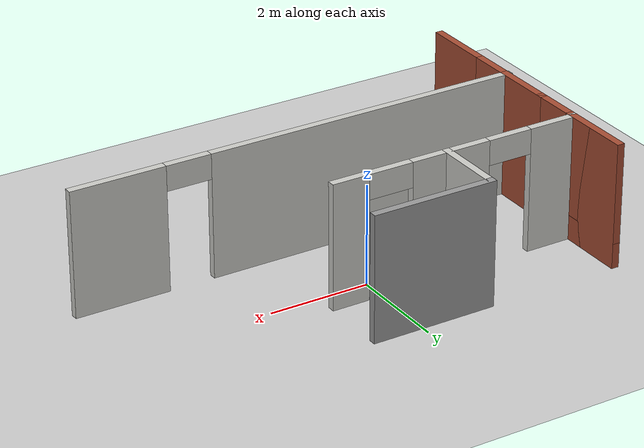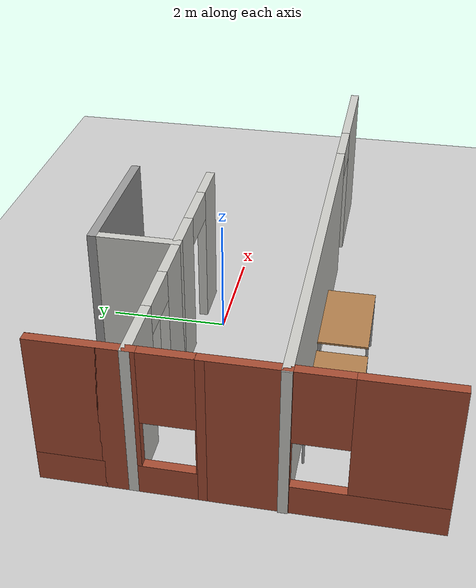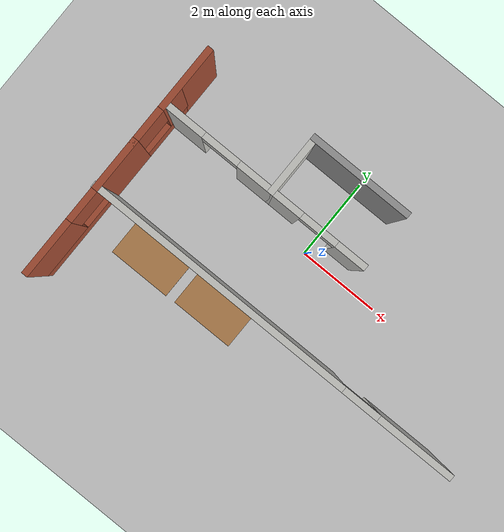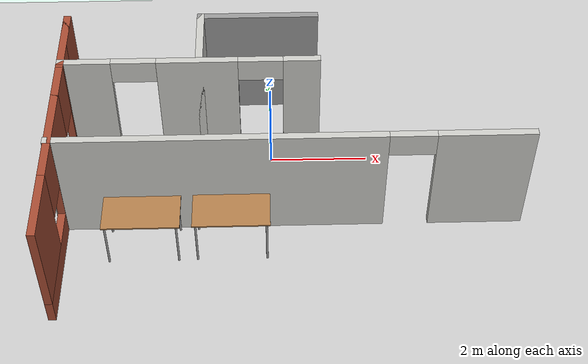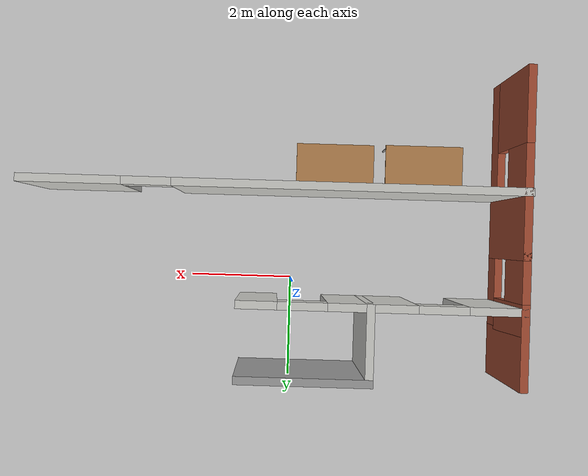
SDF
<sdf version="1.6">
 <world name="default">
  <model name="ground_plane">
   <static>1</static>
   <link name="link">
    <collision name="collision">
     <geometry><plane><normal>0 0 1</normal><size>100 100</size></plane></geometry>
     <surface>
      <contact><collide_bitmask>65535</collide_bitmask></contact>
      <friction><ode><mu>100</mu><mu2>50</mu2></ode></friction>
     </surface>
    </collision>
    <visual name="visual">
     <cast_shadows>0</cast_shadows>
     <geometry><plane><normal>0 0 1</normal><size>100 100</size></plane></geometry>
     <material>
      <script><uri>file://media/materials/scripts/gazebo.material</uri><name>Gazebo/Grey</name></script>
     </material>
    </visual>
   </link>
  </model>
  <model name="table">
   <static>1</static>
   <link name="link">
    <collision name="surface">
     <pose>0 0 1 0 -0 0</pose>
     <geometry><box><size>1.5 0.8 0.03</size></box></geometry>
     <surface><friction><ode><mu>0.6</mu><mu2>0.6</mu2></ode></friction></surface>
    </collision>
    <visual name="visual1">
     <pose>0 0 1 0 -0 0</pose>
     <geometry><box><size>1.5 0.8 0.03</size></box></geometry>
     <material>
      <script><uri>file://media/materials/scripts/gazebo.material</uri><name>Gazebo/Wood</name></script>
     </material>
    </visual>
    <collision name="front_left_leg">
     <pose>0.68 0.38 0.5 0 -0 0</pose>
     <geometry><cylinder><radius>0.02</radius><length>1</length></cylinder></geometry>
    </collision>
    <visual name="front_left_leg">
     <pose>0.68 0.38 0.5 0 -0 0</pose>
     <geometry><cylinder><radius>0.02</radius><length>1</length></cylinder></geometry>
     <material>
      <script><uri>file://media/materials/scripts/gazebo.material</uri><name>Gazebo/Grey</name></script>
     </material>
    </visual>
    <collision name="front_right_leg">
     <pose>0.68 -0.38 0.5 0 -0 0</pose>
     <geometry><cylinder><radius>0.02</radius><length>1</length></cylinder></geometry>
    </collision>
    <visual name="front_right_leg">
     <pose>0.68 -0.38 0.5 0 -0 0</pose>
     <geometry><cylinder><radius>0.02</radius><length>1</length></cylinder></geometry>
     <material>
      <script><uri>file://media/materials/scripts/gazebo.material</uri><name>Gazebo/Grey</name></script>
     </material>
    </visual>
    <collision name="back_right_leg">
     <pose>-0.68 -0.38 0.5 0 -0 0</pose>
     <geometry><cylinder><radius>0.02</radius><length>1</length></cylinder></geometry>
    </collision>
    <visual name="back_right_leg">
     <pose>-0.68 -0.38 0.5 0 -0 0</pose>
     <geometry><cylinder><radius>0.02</radius><length>1</length></cylinder></geometry>
     <material>
      <script><uri>file://media/materials/scripts/gazebo.material</uri><name>Gazebo/Grey</name></script>
     </material>
    </visual>
    <collision name="back_left_leg">
     <pose>-0.68 0.38 0.5 0 -0 0</pose>
     <geometry><cylinder><radius>0.02</radius><length>1</length></cylinder></geometry>
    </collision>
    <visual name="back_left_leg">
     <pose>-0.68 0.38 0.5 0 -0 0</pose>
     <geometry><cylinder><radius>0.02</radius><length>1</length></cylinder></geometry>
     <material>
      <script><uri>file://media/materials/scripts/gazebo.material</uri><name>Gazebo/Grey</name></script>
     </material>
    </visual>
   </link>
   <pose>-0.795331 -2.24058 0 0 -0 0</pose>
  </model>
  <model name="table_0">
   <static>1</static>
   <link name="link">
    <collision name="surface">
     <pose>0 0 1 0 -0 0</pose>
     <geometry><box><size>1.5 0.8 0.03</size></box></geometry>
     <surface><friction><ode><mu>0.6</mu><mu2>0.6</mu2></ode></friction></surface>
    </collision>
    <visual name="visual1">
     <pose>0 0 1 0 -0 0</pose>
     <geometry><box><size>1.5 0.8 0.03</size></box></geometry>
     <material>
      <script><uri>file://media/materials/scripts/gazebo.material</uri><name>Gazebo/Wood</name></script>
     </material>
    </visual>
    <collision name="front_left_leg">
     <pose>0.68 0.38 0.5 0 -0 0</pose>
     <geometry><cylinder><radius>0.02</radius><length>1</length></cylinder></geometry>
    </collision>
    <visual name="front_left_leg">
     <pose>0.68 0.38 0.5 0 -0 0</pose>
     <geometry><cylinder><radius>0.02</radius><length>1</length></cylinder></geometry>
     <material>
      <script><uri>file://media/materials/scripts/gazebo.material</uri><name>Gazebo/Grey</name></script>
     </material>
    </visual>
    <collision name="front_right_leg">
     <pose>0.68 -0.38 0.5 0 -0 0</pose>
     <geometry><cylinder><radius>0.02</radius><length>1</length></cylinder></geometry>
    </collision>
    <visual name="front_right_leg">
     <pose>0.68 -0.38 0.5 0 -0 0</pose>
     <geometry><cylinder><radius>0.02</radius><length>1</length></cylinder></geometry>
     <material>
      <script><uri>file://media/materials/scripts/gazebo.material</uri><name>Gazebo/Grey</name></script>
     </material>
    </visual>
    <collision name="back_right_leg">
     <pose>-0.68 -0.38 0.5 0 -0 0</pose>
     <geometry><cylinder><radius>0.02</radius><length>1</length></cylinder></geometry>
    </collision>
    <visual name="back_right_leg">
     <pose>-0.68 -0.38 0.5 0 -0 0</pose>
     <geometry><cylinder><radius>0.02</radius><length>1</length></cylinder></geometry>
     <material>
      <script><uri>file://media/materials/scripts/gazebo.material</uri><name>Gazebo/Grey</name></script>
     </material>
    </visual>
    <collision name="back_left_leg">
     <pose>-0.68 0.38 0.5 0 -0 0</pose>
     <geometry><cylinder><radius>0.02</radius><length>1</length></cylinder></geometry>
    </collision>
    <visual name="back_left_leg">
     <pose>-0.68 0.38 0.5 0 -0 0</pose>
     <geometry><cylinder><radius>0.02</radius><length>1</length></cylinder></geometry>
     <material>
      <script><uri>file://media/materials/scripts/gazebo.material</uri><name>Gazebo/Grey</name></script>
     </material>
    </visual>
   </link>
   <pose>-2.52213 -2.25429 0 0 -0 0</pose>
  </model>
  <model name="Building">
   <link name="Wall_0">
    <pose>-4.55 -1.175 0 0 0 -1.5708</pose>
    <visual name="Wall_0_Visual_0">
     <pose>-1.09777 0 1.25 0 -0 0</pose>
     <geometry><box><size>1.30446 0.15 2.5</size></box></geometry>
     <material>
      <script><uri>file://media/materials/scripts/gazebo.material</uri><name>Gazebo/Bricks</name></script>
      <ambient>1 1 1 1</ambient>
      <shader type="pixel"/>
      <diffuse>1 1 1 1</diffuse>
      <specular>0.2 0.2 0.2 1</specular>
      <emissive>0 0 0 1</emissive>
     </material>
     <meta><layer>0</layer></meta>
    </visual>
    <visual name="Wall_0_Visual_1">
     <pose>0.652232 0 0.25 0 -0 0</pose>
     <geometry><box><size>2.19554 0.15 0.5</size></box></geometry>
     <material>
      <script><uri>file://media/materials/scripts/gazebo.material</uri><name>Gazebo/Bricks</name></script>
      <ambient>1 1 1 1</ambient>
      <shader type="pixel"/>
      <diffuse>1 1 1 1</diffuse>
      <specular>0.2 0.2 0.2 1</specular>
      <emissive>0 0 0 1</emissive>
     </material>
     <meta><layer>0</layer></meta>
    </visual>
    <visual name="Wall_0_Visual_2">
     <pose>1.05223 0 1.5 0 -0 0</pose>
     <geometry><box><size>1.39554 0.15 2</size></box></geometry>
     <material>
      <script><uri>file://media/materials/scripts/gazebo.material</uri><name>Gazebo/Bricks</name></script>
      <ambient>1 1 1 1</ambient>
      <shader type="pixel"/>
      <diffuse>1 1 1 1</diffuse>
      <specular>0.2 0.2 0.2 1</specular>
      <emissive>0 0 0 1</emissive>
     </material>
     <meta><layer>0</layer></meta>
    </visual>
    <visual name="Wall_0_Visual_3">
     <pose>-0.045536 0 1.9 0 -0 0</pose>
     <geometry><box><size>0.8 0.15 1.2</size></box></geometry>
     <material>
      <script><uri>file://media/materials/scripts/gazebo.material</uri><name>Gazebo/Bricks</name></script>
      <ambient>1 1 1 1</ambient>
      <shader type="pixel"/>
      <diffuse>1 1 1 1</diffuse>
      <specular>0.2 0.2 0.2 1</specular>
      <emissive>0 0 0 1</emissive>
     </material>
     <meta><layer>0</layer></meta>
    </visual>
    <collision name="Wall_0_Collision_0">
     <pose>-1.09777 0 1.25 0 -0 0</pose>
     <geometry><box><size>1.30446 0.15 2.5</size></box></geometry>
     <surface>
      <friction>
       <ode><mu>1</mu><mu2>1</mu2><fdir1>0 0 0</fdir1><slip1>0</slip1><slip2>0</slip2></ode>
       <torsional>
        <coefficient>1</coefficient>
        <patch_radius>0</patch_radius>
        <surface_radius>0</surface_radius>
        <use_patch_radius>1</use_patch_radius>
        <ode><slip>0</slip></ode>
       </torsional>
      </friction>
      <bounce><restitution_coefficient>0</restitution_coefficient><threshold>1e+06</threshold></bounce>
      <contact>
       <collide_without_contact>0</collide_without_contact>
       <collide_without_contact_bitmask>1</collide_without_contact_bitmask>
       <collide_bitmask>1</collide_bitmask>
       <ode>
        <soft_cfm>0</soft_cfm>
        <soft_erp>0.2</soft_erp>
        <kp>1e+13</kp>
        <kd>1</kd>
        <max_vel>0.01</max_vel>
        <min_depth>0</min_depth>
       </ode>
       <bullet>
        <split_impulse>1</split_impulse>
        <split_impulse_penetration_threshold>-0.01</split_impulse_penetration_threshold>
        <soft_cfm>0</soft_cfm>
        <soft_erp>0.2</soft_erp>
        <kp>1e+13</kp>
        <kd>1</kd>
       </bullet>
      </contact>
     </surface>
    </collision>
    <collision name="Wall_0_Collision_1">
     <pose>0.652232 0 0.25 0 -0 0</pose>
     <geometry><box><size>2.19554 0.15 0.5</size></box></geometry>
     <surface>
      <friction>
       <ode><mu>1</mu><mu2>1</mu2><fdir1>0 0 0</fdir1><slip1>0</slip1><slip2>0</slip2></ode>
       <torsional>
        <coefficient>1</coefficient>
        <patch_radius>0</patch_radius>
        <surface_radius>0</surface_radius>
        <use_patch_radius>1</use_patch_radius>
        <ode><slip>0</slip></ode>
       </torsional>
      </friction>
      <bounce><restitution_coefficient>0</restitution_coefficient><threshold>1e+06</threshold></bounce>
      <contact>
       <collide_without_contact>0</collide_without_contact>
       <collide_without_contact_bitmask>1</collide_without_contact_bitmask>
       <collide_bitmask>1</collide_bitmask>
       <ode>
        <soft_cfm>0</soft_cfm>
        <soft_erp>0.2</soft_erp>
        <kp>1e+13</kp>
        <kd>1</kd>
        <max_vel>0.01</max_vel>
        <min_depth>0</min_depth>
       </ode>
       <bullet>
        <split_impulse>1</split_impulse>
        <split_impulse_penetration_threshold>-0.01</split_impulse_penetration_threshold>
        <soft_cfm>0</soft_cfm>
        <soft_erp>0.2</soft_erp>
        <kp>1e+13</kp>
        <kd>1</kd>
       </bullet>
      </contact>
     </surface>
    </collision>
    <collision name="Wall_0_Collision_2">
     <pose>1.05223 0 1.5 0 -0 0</pose>
     <geometry><box><size>1.39554 0.15 2</size></box></geometry>
     <surface>
      <friction>
       <ode><mu>1</mu><mu2>1</mu2><fdir1>0 0 0</fdir1><slip1>0</slip1><slip2>0</slip2></ode>
       <torsional>
        <coefficient>1</coefficient>
        <patch_radius>0</patch_radius>
        <surface_radius>0</surface_radius>
        <use_patch_radius>1</use_patch_radius>
        <ode><slip>0</slip></ode>
       </torsional>
      </friction>
      <bounce><restitution_coefficient>0</restitution_coefficient><threshold>1e+06</threshold></bounce>
      <contact>
       <collide_without_contact>0</collide_without_contact>
       <collide_without_contact_bitmask>1</collide_without_contact_bitmask>
       <collide_bitmask>1</collide_bitmask>
       <ode>
        <soft_cfm>0</soft_cfm>
        <soft_erp>0.2</soft_erp>
        <kp>1e+13</kp>
        <kd>1</kd>
        <max_vel>0.01</max_vel>
        <min_depth>0</min_depth>
       </ode>
       <bullet>
        <split_impulse>1</split_impulse>
        <split_impulse_penetration_threshold>-0.01</split_impulse_penetration_threshold>
        <soft_cfm>0</soft_cfm>
        <soft_erp>0.2</soft_erp>
        <kp>1e+13</kp>
        <kd>1</kd>
       </bullet>
      </contact>
     </surface>
    </collision>
    <collision name="Wall_0_Collision_3">
     <pose>-0.045536 0 1.9 0 -0 0</pose>
     <geometry><box><size>0.8 0.15 1.2</size></box></geometry>
     <surface>
      <friction>
       <ode><mu>1</mu><mu2>1</mu2><fdir1>0 0 0</fdir1><slip1>0</slip1><slip2>0</slip2></ode>
       <torsional>
        <coefficient>1</coefficient>
        <patch_radius>0</patch_radius>
        <surface_radius>0</surface_radius>
        <use_patch_radius>1</use_patch_radius>
        <ode><slip>0</slip></ode>
       </torsional>
      </friction>
      <bounce><restitution_coefficient>0</restitution_coefficient><threshold>1e+06</threshold></bounce>
      <contact>
       <collide_without_contact>0</collide_without_contact>
       <collide_without_contact_bitmask>1</collide_without_contact_bitmask>
       <collide_bitmask>1</collide_bitmask>
       <ode>
        <soft_cfm>0</soft_cfm>
        <soft_erp>0.2</soft_erp>
        <kp>1e+13</kp>
        <kd>1</kd>
        <max_vel>0.01</max_vel>
        <min_depth>0</min_depth>
       </ode>
       <bullet>
        <split_impulse>1</split_impulse>
        <split_impulse_penetration_threshold>-0.01</split_impulse_penetration_threshold>
        <soft_cfm>0</soft_cfm>
        <soft_erp>0.2</soft_erp>
        <kp>1e+13</kp>
        <kd>1</kd>
       </bullet>
      </contact>
     </surface>
    </collision>
   </link>
   <link name="Wall_11">
    <pose>-0.625 2.85 0 0 -0 3.14159</pose>
    <visual name="Wall_11_Visual">
     <pose>0 0 1.25 0 -0 0</pose>
     <geometry><box><size>2.5 0.15 2.5</size></box></geometry>
     <material>
      <script><uri>file://media/materials/scripts/gazebo.material</uri><name>Gazebo/Grey</name></script>
      <ambient>1 1 1 1</ambient>
      <shader type="pixel"/>
      <diffuse>0.7 0.7 0.7 1</diffuse>
      <specular>0.01 0.01 0.01 1</specular>
      <emissive>0 0 0 1</emissive>
     </material>
     <meta><layer>0</layer></meta>
    </visual>
    <collision name="Wall_11_Collision">
     <pose>0 0 1.25 0 -0 0</pose>
     <geometry><box><size>2.5 0.15 2.5</size></box></geometry>
     <surface>
      <friction>
       <ode><mu>1</mu><mu2>1</mu2><fdir1>0 0 0</fdir1><slip1>0</slip1><slip2>0</slip2></ode>
       <torsional>
        <coefficient>1</coefficient>
        <patch_radius>0</patch_radius>
        <surface_radius>0</surface_radius>
        <use_patch_radius>1</use_patch_radius>
        <ode><slip>0</slip></ode>
       </torsional>
      </friction>
      <bounce><restitution_coefficient>0</restitution_coefficient><threshold>1e+06</threshold></bounce>
      <contact>
       <collide_without_contact>0</collide_without_contact>
       <collide_without_contact_bitmask>1</collide_without_contact_bitmask>
       <collide_bitmask>1</collide_bitmask>
       <ode>
        <soft_cfm>0</soft_cfm>
        <soft_erp>0.2</soft_erp>
        <kp>1e+13</kp>
        <kd>1</kd>
        <max_vel>0.01</max_vel>
        <min_depth>0</min_depth>
       </ode>
       <bullet>
        <split_impulse>1</split_impulse>
        <split_impulse_penetration_threshold>-0.01</split_impulse_penetration_threshold>
        <soft_cfm>0</soft_cfm>
        <soft_erp>0.2</soft_erp>
        <kp>1e+13</kp>
        <kd>1</kd>
       </bullet>
      </contact>
     </surface>
    </collision>
   </link>
   <link name="Wall_12">
    <pose>-1.8 2.175 0 0 0 -1.5708</pose>
    <visual name="Wall_12_Visual">
     <pose>0 0 1.25 0 -0 0</pose>
     <geometry><box><size>1.5 0.15 2.5</size></box></geometry>
     <material>
      <script><uri>file://media/materials/scripts/gazebo.material</uri><name>Gazebo/CeilingTiled</name></script>
      <ambient>0.435294 0.796078 0.67451 1</ambient>
      <shader type="pixel"/>
      <diffuse>1 1 1 1</diffuse>
      <specular>0 0 0 1</specular>
      <emissive>0 0 0 1</emissive>
     </material>
     <meta><layer>0</layer></meta>
    </visual>
    <collision name="Wall_12_Collision">
     <pose>0 0 1.25 0 -0 0</pose>
     <geometry><box><size>1.5 0.15 2.5</size></box></geometry>
     <surface>
      <friction>
       <ode><mu>1</mu><mu2>1</mu2><fdir1>0 0 0</fdir1><slip1>0</slip1><slip2>0</slip2></ode>
       <torsional>
        <coefficient>1</coefficient>
        <patch_radius>0</patch_radius>
        <surface_radius>0</surface_radius>
        <use_patch_radius>1</use_patch_radius>
        <ode><slip>0</slip></ode>
       </torsional>
      </friction>
      <bounce><restitution_coefficient>0</restitution_coefficient><threshold>1e+06</threshold></bounce>
      <contact>
       <collide_without_contact>0</collide_without_contact>
       <collide_without_contact_bitmask>1</collide_without_contact_bitmask>
       <collide_bitmask>1</collide_bitmask>
       <ode>
        <soft_cfm>0</soft_cfm>
        <soft_erp>0.2</soft_erp>
        <kp>1e+13</kp>
        <kd>1</kd>
        <max_vel>0.01</max_vel>
        <min_depth>0</min_depth>
       </ode>
       <bullet>
        <split_impulse>1</split_impulse>
        <split_impulse_penetration_threshold>-0.01</split_impulse_penetration_threshold>
        <soft_cfm>0</soft_cfm>
        <soft_erp>0.2</soft_erp>
        <kp>1e+13</kp>
        <kd>1</kd>
       </bullet>
      </contact>
     </surface>
    </collision>
   </link>
   <link name="Wall_3">
    <pose>-0.020851 -0.650699 0 0 -0 3.14159</pose>
    <visual name="Wall_3_Visual_0">
     <pose>-3.68285 0 1.25 0 -0 0</pose>
     <geometry><box><size>1.88431 0.15 2.5</size></box></geometry>
     <material>
      <script><uri>file://media/materials/scripts/gazebo.material</uri><name>Gazebo/CeilingTiled</name></script>
      <ambient>0.435294 0.796078 0.67451 1</ambient>
      <shader type="pixel"/>
      <diffuse>1 1 1 1</diffuse>
      <specular>0 0 0 1</specular>
      <emissive>0 0 0 1</emissive>
     </material>
     <meta><layer>0</layer></meta>
    </visual>
    <visual name="Wall_3_Visual_1">
     <pose>1.39215 0 1.25 0 -0 0</pose>
     <geometry><box><size>6.46569 0.15 2.5</size></box></geometry>
     <material>
      <script><uri>file://media/materials/scripts/gazebo.material</uri><name>Gazebo/CeilingTiled</name></script>
      <ambient>0.435294 0.796078 0.67451 1</ambient>
      <shader type="pixel"/>
      <diffuse>1 1 1 1</diffuse>
      <specular>0 0 0 1</specular>
      <emissive>0 0 0 1</emissive>
     </material>
     <meta><layer>0</layer></meta>
    </visual>
    <visual name="Wall_3_Visual_2">
     <pose>-2.29069 0 2.25 0 -0 0</pose>
     <geometry><box><size>0.9 0.15 0.5</size></box></geometry>
     <material>
      <script><uri>file://media/materials/scripts/gazebo.material</uri><name>Gazebo/CeilingTiled</name></script>
      <ambient>0.435294 0.796078 0.67451 1</ambient>
      <shader type="pixel"/>
      <diffuse>1 1 1 1</diffuse>
      <specular>0 0 0 1</specular>
      <emissive>0 0 0 1</emissive>
     </material>
     <meta><layer>0</layer></meta>
    </visual>
    <collision name="Wall_3_Collision_0">
     <pose>-3.68285 0 1.25 0 -0 0</pose>
     <geometry><box><size>1.88431 0.15 2.5</size></box></geometry>
     <surface>
      <friction>
       <ode><mu>1</mu><mu2>1</mu2><fdir1>0 0 0</fdir1><slip1>0</slip1><slip2>0</slip2></ode>
       <torsional>
        <coefficient>1</coefficient>
        <patch_radius>0</patch_radius>
        <surface_radius>0</surface_radius>
        <use_patch_radius>1</use_patch_radius>
        <ode><slip>0</slip></ode>
       </torsional>
      </friction>
      <bounce><restitution_coefficient>0</restitution_coefficient><threshold>1e+06</threshold></bounce>
      <contact>
       <collide_without_contact>0</collide_without_contact>
       <collide_without_contact_bitmask>1</collide_without_contact_bitmask>
       <collide_bitmask>1</collide_bitmask>
       <ode>
        <soft_cfm>0</soft_cfm>
        <soft_erp>0.2</soft_erp>
        <kp>1e+13</kp>
        <kd>1</kd>
        <max_vel>0.01</max_vel>
        <min_depth>0</min_depth>
       </ode>
       <bullet>
        <split_impulse>1</split_impulse>
        <split_impulse_penetration_threshold>-0.01</split_impulse_penetration_threshold>
        <soft_cfm>0</soft_cfm>
        <soft_erp>0.2</soft_erp>
        <kp>1e+13</kp>
        <kd>1</kd>
       </bullet>
      </contact>
     </surface>
    </collision>
    <collision name="Wall_3_Collision_1">
     <pose>1.39215 0 1.25 0 -0 0</pose>
     <geometry><box><size>6.46569 0.15 2.5</size></box></geometry>
     <surface>
      <friction>
       <ode><mu>1</mu><mu2>1</mu2><fdir1>0 0 0</fdir1><slip1>0</slip1><slip2>0</slip2></ode>
       <torsional>
        <coefficient>1</coefficient>
        <patch_radius>0</patch_radius>
        <surface_radius>0</surface_radius>
        <use_patch_radius>1</use_patch_radius>
        <ode><slip>0</slip></ode>
       </torsional>
      </friction>
      <bounce><restitution_coefficient>0</restitution_coefficient><threshold>1e+06</threshold></bounce>
      <contact>
       <collide_without_contact>0</collide_without_contact>
       <collide_without_contact_bitmask>1</collide_without_contact_bitmask>
       <collide_bitmask>1</collide_bitmask>
       <ode>
        <soft_cfm>0</soft_cfm>
        <soft_erp>0.2</soft_erp>
        <kp>1e+13</kp>
        <kd>1</kd>
        <max_vel>0.01</max_vel>
        <min_depth>0</min_depth>
       </ode>
       <bullet>
        <split_impulse>1</split_impulse>
        <split_impulse_penetration_threshold>-0.01</split_impulse_penetration_threshold>
        <soft_cfm>0</soft_cfm>
        <soft_erp>0.2</soft_erp>
        <kp>1e+13</kp>
        <kd>1</kd>
       </bullet>
      </contact>
     </surface>
    </collision>
    <collision name="Wall_3_Collision_2">
     <pose>-2.29069 0 2.25 0 -0 0</pose>
     <geometry><box><size>0.9 0.15 0.5</size></box></geometry>
     <surface>
      <friction>
       <ode><mu>1</mu><mu2>1</mu2><fdir1>0 0 0</fdir1><slip1>0</slip1><slip2>0</slip2></ode>
       <torsional>
        <coefficient>1</coefficient>
        <patch_radius>0</patch_radius>
        <surface_radius>0</surface_radius>
        <use_patch_radius>1</use_patch_radius>
        <ode><slip>0</slip></ode>
       </torsional>
      </friction>
      <bounce><restitution_coefficient>0</restitution_coefficient><threshold>1e+06</threshold></bounce>
      <contact>
       <collide_without_contact>0</collide_without_contact>
       <collide_without_contact_bitmask>1</collide_without_contact_bitmask>
       <collide_bitmask>1</collide_bitmask>
       <ode>
        <soft_cfm>0</soft_cfm>
        <soft_erp>0.2</soft_erp>
        <kp>1e+13</kp>
        <kd>1</kd>
        <max_vel>0.01</max_vel>
        <min_depth>0</min_depth>
       </ode>
       <bullet>
        <split_impulse>1</split_impulse>
        <split_impulse_penetration_threshold>-0.01</split_impulse_penetration_threshold>
        <soft_cfm>0</soft_cfm>
        <soft_erp>0.2</soft_erp>
        <kp>1e+13</kp>
        <kd>1</kd>
       </bullet>
      </contact>
     </surface>
    </collision>
   </link>
   <link name="Wall_4">
    <pose>-4.55 1.675 0 0 -0 1.5708</pose>
    <visual name="Wall_4_Visual_3">
     <pose>-0.717268 0 1.9 0 -0 0</pose>
     <geometry><box><size>0.8 0.15 1.2</size></box></geometry>
     <material>
      <script><uri>file://media/materials/scripts/gazebo.material</uri><name>Gazebo/Bricks</name></script>
      <ambient>1 1 1 1</ambient>
      <shader type="pixel"/>
      <diffuse>1 1 1 1</diffuse>
      <specular>0.2 0.2 0.2 1</specular>
      <emissive>0 0 0 1</emissive>
     </material>
     <meta><layer>0</layer></meta>
    </visual>
    <visual name="Wall_4_Visual_0">
     <pose>-1.18363 0 1.25 0 -0 0</pose>
     <geometry><box><size>0.132732 0.15 2.5</size></box></geometry>
     <material>
      <script><uri>file://media/materials/scripts/gazebo.material</uri><name>Gazebo/Bricks</name></script>
      <ambient>1 1 1 1</ambient>
      <shader type="pixel"/>
      <diffuse>1 1 1 1</diffuse>
      <specular>0.2 0.2 0.2 1</specular>
      <emissive>0 0 0 1</emissive>
     </material>
     <meta><layer>0</layer></meta>
    </visual>
    <visual name="Wall_4_Visual_1">
     <pose>0.066366 0 0.25 0 -0 0</pose>
     <geometry><box><size>2.36727 0.15 0.5</size></box></geometry>
     <material>
      <script><uri>file://media/materials/scripts/gazebo.material</uri><name>Gazebo/Bricks</name></script>
      <ambient>1 1 1 1</ambient>
      <shader type="pixel"/>
      <diffuse>1 1 1 1</diffuse>
      <specular>0.2 0.2 0.2 1</specular>
      <emissive>0 0 0 1</emissive>
     </material>
     <meta><layer>0</layer></meta>
    </visual>
    <visual name="Wall_4_Visual_2">
     <pose>0.466366 0 1.5 0 -0 0</pose>
     <geometry><box><size>1.56727 0.15 2</size></box></geometry>
     <material>
      <script><uri>file://media/materials/scripts/gazebo.material</uri><name>Gazebo/Bricks</name></script>
      <ambient>1 1 1 1</ambient>
      <shader type="pixel"/>
      <diffuse>1 1 1 1</diffuse>
      <specular>0.2 0.2 0.2 1</specular>
      <emissive>0 0 0 1</emissive>
     </material>
     <meta><layer>0</layer></meta>
    </visual>
    <collision name="Wall_4_Collision_0">
     <pose>-1.18363 0 1.25 0 -0 0</pose>
     <geometry><box><size>0.132732 0.15 2.5</size></box></geometry>
     <surface>
      <friction>
       <ode><mu>1</mu><mu2>1</mu2><fdir1>0 0 0</fdir1><slip1>0</slip1><slip2>0</slip2></ode>
       <torsional>
        <coefficient>1</coefficient>
        <patch_radius>0</patch_radius>
        <surface_radius>0</surface_radius>
        <use_patch_radius>1</use_patch_radius>
        <ode><slip>0</slip></ode>
       </torsional>
      </friction>
      <bounce><restitution_coefficient>0</restitution_coefficient><threshold>1e+06</threshold></bounce>
      <contact>
       <collide_without_contact>0</collide_without_contact>
       <collide_without_contact_bitmask>1</collide_without_contact_bitmask>
       <collide_bitmask>1</collide_bitmask>
       <ode>
        <soft_cfm>0</soft_cfm>
        <soft_erp>0.2</soft_erp>
        <kp>1e+13</kp>
        <kd>1</kd>
        <max_vel>0.01</max_vel>
        <min_depth>0</min_depth>
       </ode>
       <bullet>
        <split_impulse>1</split_impulse>
        <split_impulse_penetration_threshold>-0.01</split_impulse_penetration_threshold>
        <soft_cfm>0</soft_cfm>
        <soft_erp>0.2</soft_erp>
        <kp>1e+13</kp>
        <kd>1</kd>
       </bullet>
      </contact>
     </surface>
    </collision>
    <collision name="Wall_4_Collision_1">
     <pose>0.066366 0 0.25 0 -0 0</pose>
     <geometry><box><size>2.36727 0.15 0.5</size></box></geometry>
     <surface>
      <friction>
       <ode><mu>1</mu><mu2>1</mu2><fdir1>0 0 0</fdir1><slip1>0</slip1><slip2>0</slip2></ode>
       <torsional>
        <coefficient>1</coefficient>
        <patch_radius>0</patch_radius>
        <surface_radius>0</surface_radius>
        <use_patch_radius>1</use_patch_radius>
        <ode><slip>0</slip></ode>
       </torsional>
      </friction>
      <bounce><restitution_coefficient>0</restitution_coefficient><threshold>1e+06</threshold></bounce>
      <contact>
       <collide_without_contact>0</collide_without_contact>
       <collide_without_contact_bitmask>1</collide_without_contact_bitmask>
       <collide_bitmask>1</collide_bitmask>
       <ode>
        <soft_cfm>0</soft_cfm>
        <soft_erp>0.2</soft_erp>
        <kp>1e+13</kp>
        <kd>1</kd>
        <max_vel>0.01</max_vel>
        <min_depth>0</min_depth>
       </ode>
       <bullet>
        <split_impulse>1</split_impulse>
        <split_impulse_penetration_threshold>-0.01</split_impulse_penetration_threshold>
        <soft_cfm>0</soft_cfm>
        <soft_erp>0.2</soft_erp>
        <kp>1e+13</kp>
        <kd>1</kd>
       </bullet>
      </contact>
     </surface>
    </collision>
    <collision name="Wall_4_Collision_2">
     <pose>0.466366 0 1.5 0 -0 0</pose>
     <geometry><box><size>1.56727 0.15 2</size></box></geometry>
     <surface>
      <friction>
       <ode><mu>1</mu><mu2>1</mu2><fdir1>0 0 0</fdir1><slip1>0</slip1><slip2>0</slip2></ode>
       <torsional>
        <coefficient>1</coefficient>
        <patch_radius>0</patch_radius>
        <surface_radius>0</surface_radius>
        <use_patch_radius>1</use_patch_radius>
        <ode><slip>0</slip></ode>
       </torsional>
      </friction>
      <bounce><restitution_coefficient>0</restitution_coefficient><threshold>1e+06</threshold></bounce>
      <contact>
       <collide_without_contact>0</collide_without_contact>
       <collide_without_contact_bitmask>1</collide_without_contact_bitmask>
       <collide_bitmask>1</collide_bitmask>
       <ode>
        <soft_cfm>0</soft_cfm>
        <soft_erp>0.2</soft_erp>
        <kp>1e+13</kp>
        <kd>1</kd>
        <max_vel>0.01</max_vel>
        <min_depth>0</min_depth>
       </ode>
       <bullet>
        <split_impulse>1</split_impulse>
        <split_impulse_penetration_threshold>-0.01</split_impulse_penetration_threshold>
        <soft_cfm>0</soft_cfm>
        <soft_erp>0.2</soft_erp>
        <kp>1e+13</kp>
        <kd>1</kd>
       </bullet>
      </contact>
     </surface>
    </collision>
    <collision name="Wall_4_Collision_3">
     <pose>-0.717268 0 1.9 0 -0 0</pose>
     <geometry><box><size>0.8 0.15 1.2</size></box></geometry>
     <surface>
      <friction>
       <ode><mu>1</mu><mu2>1</mu2><fdir1>0 0 0</fdir1><slip1>0</slip1><slip2>0</slip2></ode>
       <torsional>
        <coefficient>1</coefficient>
        <patch_radius>0</patch_radius>
        <surface_radius>0</surface_radius>
        <use_patch_radius>1</use_patch_radius>
        <ode><slip>0</slip></ode>
       </torsional>
      </friction>
      <bounce><restitution_coefficient>0</restitution_coefficient><threshold>1e+06</threshold></bounce>
      <contact>
       <collide_without_contact>0</collide_without_contact>
       <collide_without_contact_bitmask>1</collide_without_contact_bitmask>
       <collide_bitmask>1</collide_bitmask>
       <ode>
        <soft_cfm>0</soft_cfm>
        <soft_erp>0.2</soft_erp>
        <kp>1e+13</kp>
        <kd>1</kd>
        <max_vel>0.01</max_vel>
        <min_depth>0</min_depth>
       </ode>
       <bullet>
        <split_impulse>1</split_impulse>
        <split_impulse_penetration_threshold>-0.01</split_impulse_penetration_threshold>
        <soft_cfm>0</soft_cfm>
        <soft_erp>0.2</soft_erp>
        <kp>1e+13</kp>
        <kd>1</kd>
       </bullet>
      </contact>
     </surface>
    </collision>
   </link>
   <link name="Wall_8">
    <pose>-4.55 2.175 0 0 0 -1.5708</pose>
    <visual name="Wall_8_Visual">
     <pose>0 0 1.25 0 -0 0</pose>
     <geometry><box><size>1.5 0.15 2.5</size></box></geometry>
     <material>
      <script><uri>file://media/materials/scripts/gazebo.material</uri><name>Gazebo/Bricks</name></script>
      <ambient>1 1 1 1</ambient>
      <shader type="pixel"/>
      <diffuse>1 1 1 1</diffuse>
      <specular>0.2 0.2 0.2 1</specular>
      <emissive>0 0 0 1</emissive>
     </material>
     <meta><layer>0</layer></meta>
    </visual>
    <collision name="Wall_8_Collision">
     <pose>0 0 1.25 0 -0 0</pose>
     <geometry><box><size>1.5 0.15 2.5</size></box></geometry>
     <surface>
      <friction>
       <ode><mu>1</mu><mu2>1</mu2><fdir1>0 0 0</fdir1><slip1>0</slip1><slip2>0</slip2></ode>
       <torsional>
        <coefficient>1</coefficient>
        <patch_radius>0</patch_radius>
        <surface_radius>0</surface_radius>
        <use_patch_radius>1</use_patch_radius>
        <ode><slip>0</slip></ode>
       </torsional>
      </friction>
      <bounce><restitution_coefficient>0</restitution_coefficient><threshold>1e+06</threshold></bounce>
      <contact>
       <collide_without_contact>0</collide_without_contact>
       <collide_without_contact_bitmask>1</collide_without_contact_bitmask>
       <collide_bitmask>1</collide_bitmask>
       <ode>
        <soft_cfm>0</soft_cfm>
        <soft_erp>0.2</soft_erp>
        <kp>1e+13</kp>
        <kd>1</kd>
        <max_vel>0.01</max_vel>
        <min_depth>0</min_depth>
       </ode>
       <bullet>
        <split_impulse>1</split_impulse>
        <split_impulse_penetration_threshold>-0.01</split_impulse_penetration_threshold>
        <soft_cfm>0</soft_cfm>
        <soft_erp>0.2</soft_erp>
        <kp>1e+13</kp>
        <kd>1</kd>
       </bullet>
      </contact>
     </surface>
    </collision>
   </link>
   <link name="Wall_9">
    <pose>-2 1.5 0 0 -0 0</pose>
    <visual name="Wall_9_Visual_0">
     <pose>-2.09024 0 1.25 0 -0 0</pose>
     <geometry><box><size>1.06953 0.15 2.5</size></box></geometry>
     <material>
      <script><uri>file://media/materials/scripts/gazebo.material</uri><name>Gazebo/CeilingTiled</name></script>
      <ambient>0.435294 0.796078 0.67451 1</ambient>
      <shader type="pixel"/>
      <diffuse>1 1 1 1</diffuse>
      <specular>0 0 0 1</specular>
      <emissive>0 0 0 1</emissive>
     </material>
     <meta><layer>0</layer></meta>
    </visual>
    <visual name="Wall_9_Visual_1">
     <pose>0.158723 0 1.25 0 -0 0</pose>
     <geometry><box><size>1.62839 0.15 2.5</size></box></geometry>
     <material>
      <script><uri>file://media/materials/scripts/gazebo.material</uri><name>Gazebo/CeilingTiled</name></script>
      <ambient>0.435294 0.796078 0.67451 1</ambient>
      <shader type="pixel"/>
      <diffuse>1 1 1 1</diffuse>
      <specular>0 0 0 1</specular>
      <emissive>0 0 0 1</emissive>
     </material>
     <meta><layer>0</layer></meta>
    </visual>
    <visual name="Wall_9_Visual_2">
     <pose>2.24896 0 1.25 0 -0 0</pose>
     <geometry><box><size>0.752081 0.15 2.5</size></box></geometry>
     <material>
      <script><uri>file://media/materials/scripts/gazebo.material</uri><name>Gazebo/CeilingTiled</name></script>
      <ambient>0.435294 0.796078 0.67451 1</ambient>
      <shader type="pixel"/>
      <diffuse>1 1 1 1</diffuse>
      <specular>0 0 0 1</specular>
      <emissive>0 0 0 1</emissive>
     </material>
     <meta><layer>0</layer></meta>
    </visual>
    <visual name="Wall_9_Visual_3">
     <pose>-1.10547 0 2.25 0 -0 0</pose>
     <geometry><box><size>0.9 0.15 0.5</size></box></geometry>
     <material>
      <script><uri>file://media/materials/scripts/gazebo.material</uri><name>Gazebo/CeilingTiled</name></script>
      <ambient>0.435294 0.796078 0.67451 1</ambient>
      <shader type="pixel"/>
      <diffuse>1 1 1 1</diffuse>
      <specular>0 0 0 1</specular>
      <emissive>0 0 0 1</emissive>
     </material>
     <meta><layer>0</layer></meta>
    </visual>
    <visual name="Wall_9_Visual_4">
     <pose>1.42292 0 2.25 0 -0 0</pose>
     <geometry><box><size>0.9 0.15 0.5</size></box></geometry>
     <material>
      <script><uri>file://media/materials/scripts/gazebo.material</uri><name>Gazebo/CeilingTiled</name></script>
      <ambient>0.435294 0.796078 0.67451 1</ambient>
      <shader type="pixel"/>
      <diffuse>1 1 1 1</diffuse>
      <specular>0 0 0 1</specular>
      <emissive>0 0 0 1</emissive>
     </material>
     <meta><layer>0</layer></meta>
    </visual>
    <collision name="Wall_9_Collision_0">
     <pose>-2.09024 0 1.25 0 -0 0</pose>
     <geometry><box><size>1.06953 0.15 2.5</size></box></geometry>
     <surface>
      <friction>
       <ode><mu>1</mu><mu2>1</mu2><fdir1>0 0 0</fdir1><slip1>0</slip1><slip2>0</slip2></ode>
       <torsional>
        <coefficient>1</coefficient>
        <patch_radius>0</patch_radius>
        <surface_radius>0</surface_radius>
        <use_patch_radius>1</use_patch_radius>
        <ode><slip>0</slip></ode>
       </torsional>
      </friction>
      <bounce><restitution_coefficient>0</restitution_coefficient><threshold>1e+06</threshold></bounce>
      <contact>
       <collide_without_contact>0</collide_without_contact>
       <collide_without_contact_bitmask>1</collide_without_contact_bitmask>
       <collide_bitmask>1</collide_bitmask>
       <ode>
        <soft_cfm>0</soft_cfm>
        <soft_erp>0.2</soft_erp>
        <kp>1e+13</kp>
        <kd>1</kd>
        <max_vel>0.01</max_vel>
        <min_depth>0</min_depth>
       </ode>
       <bullet>
        <split_impulse>1</split_impulse>
        <split_impulse_penetration_threshold>-0.01</split_impulse_penetration_threshold>
        <soft_cfm>0</soft_cfm>
        <soft_erp>0.2</soft_erp>
        <kp>1e+13</kp>
        <kd>1</kd>
       </bullet>
      </contact>
     </surface>
    </collision>
    <collision name="Wall_9_Collision_1">
     <pose>0.158723 0 1.25 0 -0 0</pose>
     <geometry><box><size>1.62839 0.15 2.5</size></box></geometry>
     <surface>
      <friction>
       <ode><mu>1</mu><mu2>1</mu2><fdir1>0 0 0</fdir1><slip1>0</slip1><slip2>0</slip2></ode>
       <torsional>
        <coefficient>1</coefficient>
        <patch_radius>0</patch_radius>
        <surface_radius>0</surface_radius>
        <use_patch_radius>1</use_patch_radius>
        <ode><slip>0</slip></ode>
       </torsional>
      </friction>
      <bounce><restitution_coefficient>0</restitution_coefficient><threshold>1e+06</threshold></bounce>
      <contact>
       <collide_without_contact>0</collide_without_contact>
       <collide_without_contact_bitmask>1</collide_without_contact_bitmask>
       <collide_bitmask>1</collide_bitmask>
       <ode>
        <soft_cfm>0</soft_cfm>
        <soft_erp>0.2</soft_erp>
        <kp>1e+13</kp>
        <kd>1</kd>
        <max_vel>0.01</max_vel>
        <min_depth>0</min_depth>
       </ode>
       <bullet>
        <split_impulse>1</split_impulse>
        <split_impulse_penetration_threshold>-0.01</split_impulse_penetration_threshold>
        <soft_cfm>0</soft_cfm>
        <soft_erp>0.2</soft_erp>
        <kp>1e+13</kp>
        <kd>1</kd>
       </bullet>
      </contact>
     </surface>
    </collision>
    <collision name="Wall_9_Collision_2">
     <pose>2.24896 0 1.25 0 -0 0</pose>
     <geometry><box><size>0.752081 0.15 2.5</size></box></geometry>
     <surface>
      <friction>
       <ode><mu>1</mu><mu2>1</mu2><fdir1>0 0 0</fdir1><slip1>0</slip1><slip2>0</slip2></ode>
       <torsional>
        <coefficient>1</coefficient>
        <patch_radius>0</patch_radius>
        <surface_radius>0</surface_radius>
        <use_patch_radius>1</use_patch_radius>
        <ode><slip>0</slip></ode>
       </torsional>
      </friction>
      <bounce><restitution_coefficient>0</restitution_coefficient><threshold>1e+06</threshold></bounce>
      <contact>
       <collide_without_contact>0</collide_without_contact>
       <collide_without_contact_bitmask>1</collide_without_contact_bitmask>
       <collide_bitmask>1</collide_bitmask>
       <ode>
        <soft_cfm>0</soft_cfm>
        <soft_erp>0.2</soft_erp>
        <kp>1e+13</kp>
        <kd>1</kd>
        <max_vel>0.01</max_vel>
        <min_depth>0</min_depth>
       </ode>
       <bullet>
        <split_impulse>1</split_impulse>
        <split_impulse_penetration_threshold>-0.01</split_impulse_penetration_threshold>
        <soft_cfm>0</soft_cfm>
        <soft_erp>0.2</soft_erp>
        <kp>1e+13</kp>
        <kd>1</kd>
       </bullet>
      </contact>
     </surface>
    </collision>
    <collision name="Wall_9_Collision_3">
     <pose>-1.10547 0 2.25 0 -0 0</pose>
     <geometry><box><size>0.9 0.15 0.5</size></box></geometry>
     <surface>
      <friction>
       <ode><mu>1</mu><mu2>1</mu2><fdir1>0 0 0</fdir1><slip1>0</slip1><slip2>0</slip2></ode>
       <torsional>
        <coefficient>1</coefficient>
        <patch_radius>0</patch_radius>
        <surface_radius>0</surface_radius>
        <use_patch_radius>1</use_patch_radius>
        <ode><slip>0</slip></ode>
       </torsional>
      </friction>
      <bounce><restitution_coefficient>0</restitution_coefficient><threshold>1e+06</threshold></bounce>
      <contact>
       <collide_without_contact>0</collide_without_contact>
       <collide_without_contact_bitmask>1</collide_without_contact_bitmask>
       <collide_bitmask>1</collide_bitmask>
       <ode>
        <soft_cfm>0</soft_cfm>
        <soft_erp>0.2</soft_erp>
        <kp>1e+13</kp>
        <kd>1</kd>
        <max_vel>0.01</max_vel>
        <min_depth>0</min_depth>
       </ode>
       <bullet>
        <split_impulse>1</split_impulse>
        <split_impulse_penetration_threshold>-0.01</split_impulse_penetration_threshold>
        <soft_cfm>0</soft_cfm>
        <soft_erp>0.2</soft_erp>
        <kp>1e+13</kp>
        <kd>1</kd>
       </bullet>
      </contact>
     </surface>
    </collision>
    <collision name="Wall_9_Collision_4">
     <pose>1.42292 0 2.25 0 -0 0</pose>
     <geometry><box><size>0.9 0.15 0.5</size></box></geometry>
     <surface>
      <friction>
       <ode><mu>1</mu><mu2>1</mu2><fdir1>0 0 0</fdir1><slip1>0</slip1><slip2>0</slip2></ode>
       <torsional>
        <coefficient>1</coefficient>
        <patch_radius>0</patch_radius>
        <surface_radius>0</surface_radius>
        <use_patch_radius>1</use_patch_radius>
        <ode><slip>0</slip></ode>
       </torsional>
      </friction>
      <bounce><restitution_coefficient>0</restitution_coefficient><threshold>1e+06</threshold></bounce>
      <contact>
       <collide_without_contact>0</collide_without_contact>
       <collide_without_contact_bitmask>1</collide_without_contact_bitmask>
       <collide_bitmask>1</collide_bitmask>
       <ode>
        <soft_cfm>0</soft_cfm>
        <soft_erp>0.2</soft_erp>
        <kp>1e+13</kp>
        <kd>1</kd>
        <max_vel>0.01</max_vel>
        <min_depth>0</min_depth>
       </ode>
       <bullet>
        <split_impulse>1</split_impulse>
        <split_impulse_penetration_threshold>-0.01</split_impulse_penetration_threshold>
        <soft_cfm>0</soft_cfm>
        <soft_erp>0.2</soft_erp>
        <kp>1e+13</kp>
        <kd>1</kd>
       </bullet>
      </contact>
     </surface>
    </collision>
   </link>
   <static>1</static>
   <pose>0.39 -1.08 0 0 -0 0</pose>
  </model>
 </world>
</sdf>
